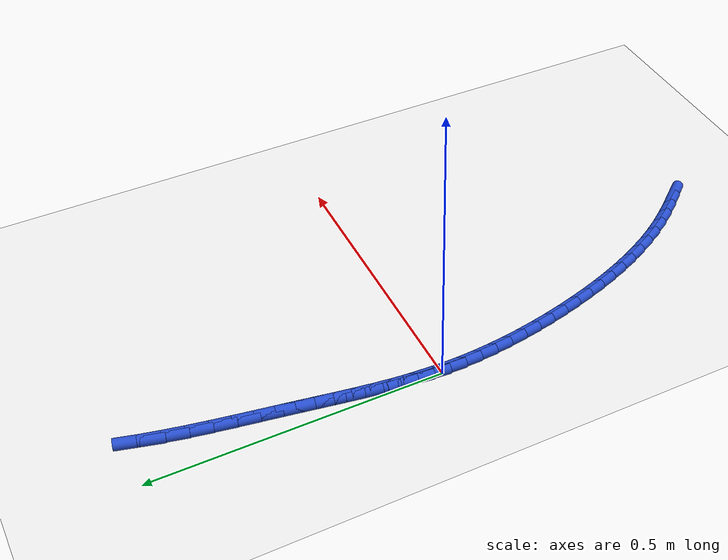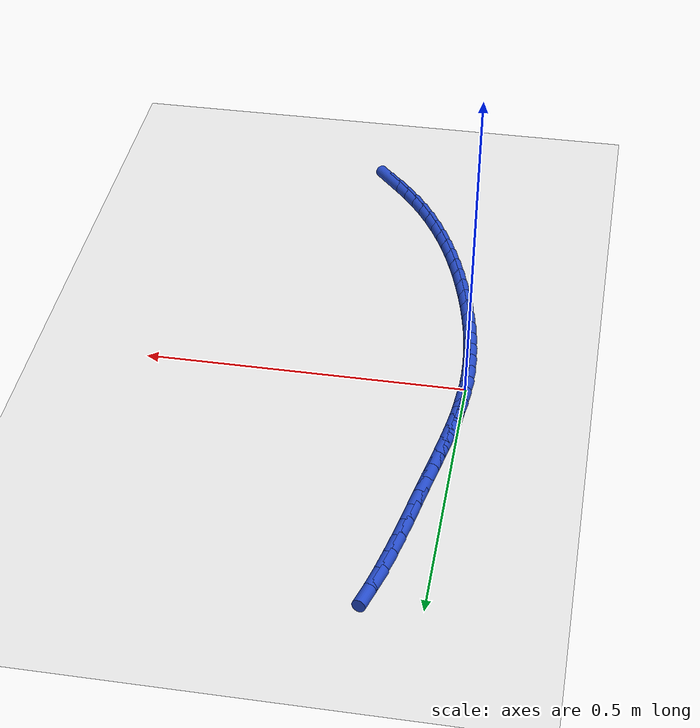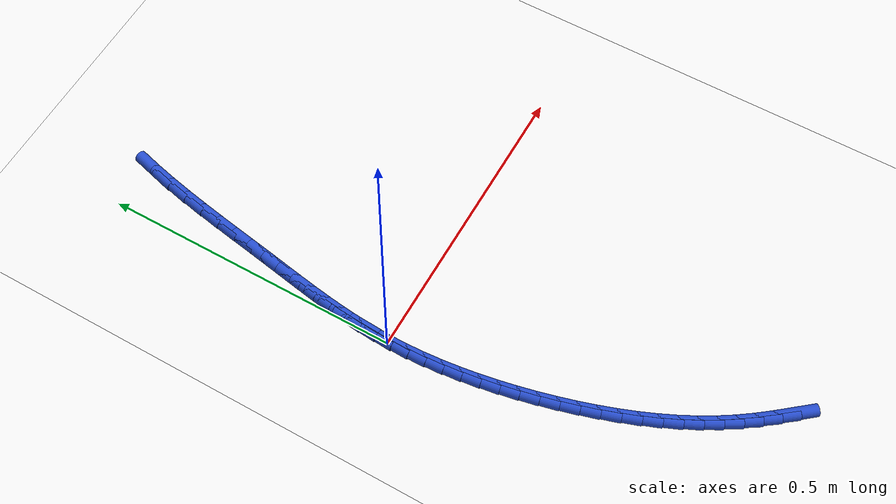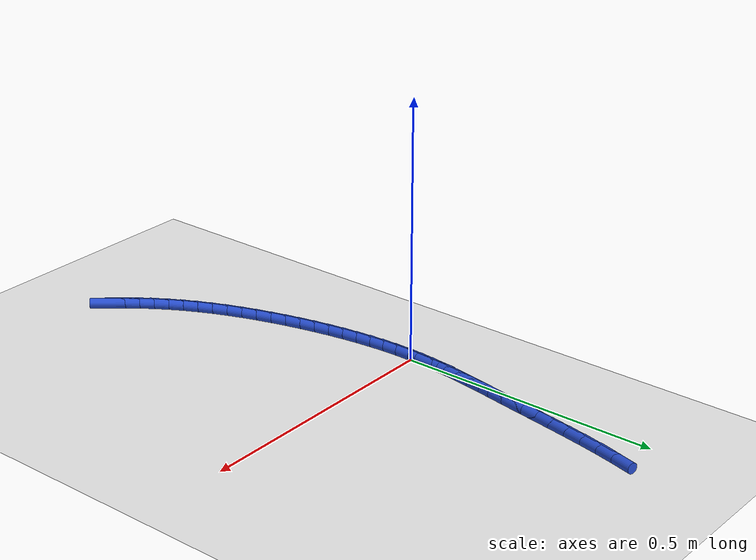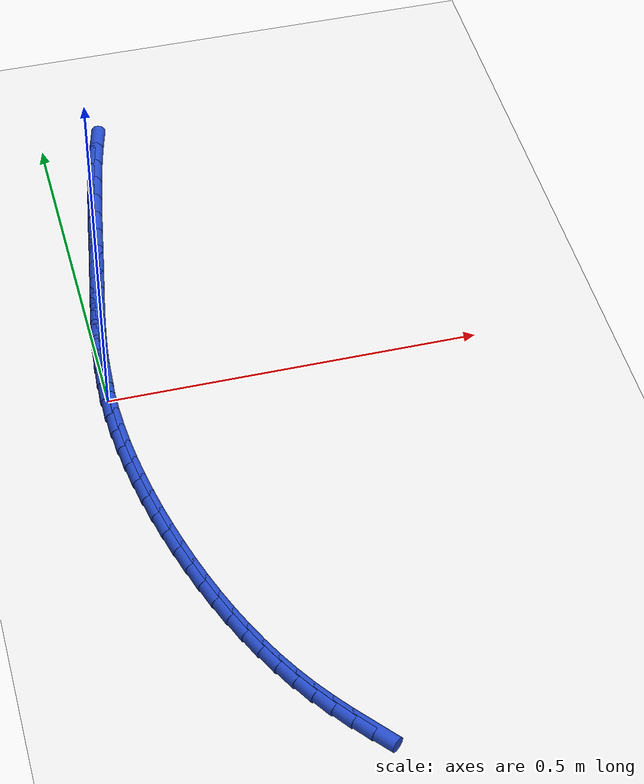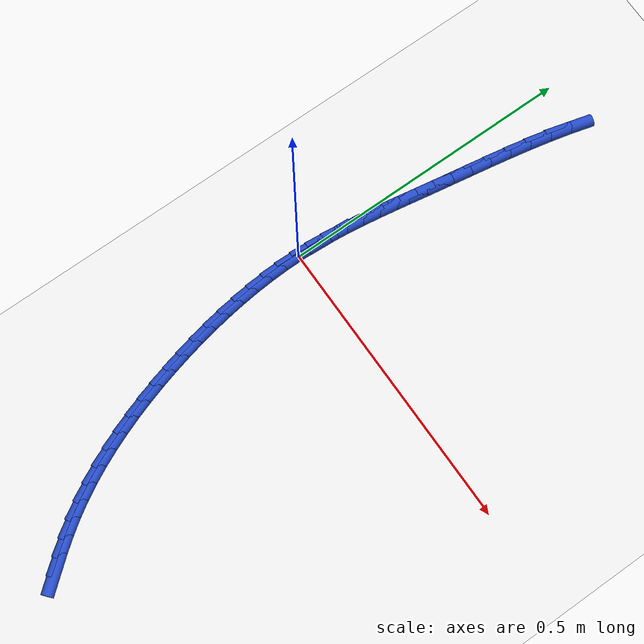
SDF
<sdf version="1.6">
 <world name="default">
  <model name="ground_plane">
   <static>1</static>
   <link name="link">
    <collision name="collision">
     <geometry><plane><normal>0 0 1</normal><size>100 100</size></plane></geometry>
     <surface><friction><ode><mu>100</mu><mu2>50</mu2></ode></friction></surface>
    </collision>
    <visual name="visual">
     <cast_shadows>0</cast_shadows>
     <geometry><plane><normal>0 0 1</normal><size>100 100</size></plane></geometry>
     <material>
      <script><uri>file://media/materials/scripts/gazebo.material</uri><name>Gazebo/WhiteGlow</name></script>
     </material>
    </visual>
   </link>
  </model>
  <model name="line">
   <link name="link_0">
    <pose>-6.938893903907228e-18 6.938893903907228e-17 0.01 0 1.57 1.5339146569883464</pose>
    <collision name="collision">
     <geometry><cylinder><radius>0.01</radius><length>0.08</length></cylinder></geometry>
    </collision>
    <visual name="visual">
     <material>
      <script><name>Gazebo/Blue</name><uri>file://media/materials/scripts/gazebo.material</uri></script>
     </material>
     <geometry><cylinder><radius>0.01</radius><length>0.08</length></cylinder></geometry>
    </visual>
   </link>
   <link name="link_1">
    <pose>0.0010493052129371212 0.02843768734357131 0.01 0 1.57 1.4981101231882537</pose>
    <collision name="collision">
     <geometry><cylinder><radius>0.01</radius><length>0.08</length></cylinder></geometry>
    </collision>
    <visual name="visual">
     <material>
      <script><name>Gazebo/Blue</name><uri>file://media/materials/scripts/gazebo.material</uri></script>
     </material>
     <geometry><cylinder><radius>0.01</radius><length>0.08</length></cylinder></geometry>
    </visual>
   </link>
   <link name="link_2">
    <pose>0.0031059583936793324 0.0566827990900283 0.01 0 1.57 1.4670960202386527</pose>
    <collision name="collision">
     <geometry><cylinder><radius>0.01</radius><length>0.08</length></cylinder></geometry>
    </collision>
    <visual name="visual">
     <material>
      <script><name>Gazebo/Blue</name><uri>file://media/materials/scripts/gazebo.material</uri></script>
     </material>
     <geometry><cylinder><radius>0.01</radius><length>0.08</length></cylinder></geometry>
    </visual>
   </link>
   <link name="link_3">
    <pose>0.0060472240694927895 0.08494418993205767 0.01 0 1.57 1.4415249648356097</pose>
    <collision name="collision">
     <geometry><cylinder><radius>0.01</radius><length>0.08</length></cylinder></geometry>
    </collision>
    <visual name="visual">
     <material>
      <script><name>Gazebo/Blue</name><uri>file://media/materials/scripts/gazebo.material</uri></script>
     </material>
     <geometry><cylinder><radius>0.01</radius><length>0.08</length></cylinder></geometry>
    </visual>
   </link>
   <link name="link_4">
    <pose>0.009750366767643648 0.11343071456234598 0.01 0 1.57 1.4217641060363364</pose>
    <collision name="collision">
     <geometry><cylinder><radius>0.01</radius><length>0.08</length></cylinder></geometry>
    </collision>
    <visual name="visual">
     <material>
      <script><name>Gazebo/Blue</name><uri>file://media/materials/scripts/gazebo.material</uri></script>
     </material>
     <geometry><cylinder><radius>0.01</radius><length>0.08</length></cylinder></geometry>
    </visual>
   </link>
   <link name="link_5">
    <pose>0.014092651015398076 0.14235122767357986 0.01 0 1.57 1.4079041039659708</pose>
    <collision name="collision">
     <geometry><cylinder><radius>0.01</radius><length>0.08</length></cylinder></geometry>
    </collision>
    <visual name="visual">
     <material>
      <script><name>Gazebo/Blue</name><uri>file://media/materials/scripts/gazebo.material</uri></script>
     </material>
     <geometry><cylinder><radius>0.01</radius><length>0.08</length></cylinder></geometry>
    </visual>
   </link>
   <link name="link_6">
    <pose>0.01895134134002223 0.17191458395844592 0.01 0 1.57 1.3997933661096715</pose>
    <collision name="collision">
     <geometry><cylinder><radius>0.01</radius><length>0.08</length></cylinder></geometry>
    </collision>
    <visual name="visual">
     <material>
      <script><name>Gazebo/Blue</name><uri>file://media/materials/scripts/gazebo.material</uri></script>
     </material>
     <geometry><cylinder><radius>0.01</radius><length>0.08</length></cylinder></geometry>
    </visual>
   </link>
   <link name="link_7">
    <pose>0.024203702268782275 0.20232963810963076 0.01 0 1.57 1.3970862993420965</pose>
    <collision name="collision">
     <geometry><cylinder><radius>0.01</radius><length>0.08</length></cylinder></geometry>
    </collision>
    <visual name="visual">
     <material>
      <script><name>Gazebo/Blue</name><uri>file://media/materials/scripts/gazebo.material</uri></script>
     </material>
     <geometry><cylinder><radius>0.01</radius><length>0.08</length></cylinder></geometry>
    </visual>
   </link>
   <link name="link_8">
    <pose>0.029726998328944352 0.2338052448198209 0.01 0 1.57 1.3992734096021746</pose>
    <collision name="collision">
     <geometry><cylinder><radius>0.01</radius><length>0.08</length></cylinder></geometry>
    </collision>
    <visual name="visual">
     <material>
      <script><name>Gazebo/Blue</name><uri>file://media/materials/scripts/gazebo.material</uri></script>
     </material>
     <geometry><cylinder><radius>0.01</radius><length>0.08</length></cylinder></geometry>
    </visual>
   </link>
   <link name="link_9">
    <pose>0.035399047078439085 0.26654906317082605 0.01 0 1.57 1.4026593575670723</pose>
    <collision name="collision">
     <geometry><cylinder><radius>0.01</radius><length>0.08</length></cylinder></geometry>
    </collision>
    <visual name="visual">
     <material>
      <script><name>Gazebo/Blue</name><uri>file://media/materials/scripts/gazebo.material</uri></script>
     </material>
     <geometry><cylinder><radius>0.01</radius><length>0.08</length></cylinder></geometry>
    </visual>
   </link>
   <link name="link_10">
    <pose>0.04117800039227584 0.30059507546760517 0.01 0 1.57 1.400934298260555</pose>
    <collision name="collision">
     <geometry><cylinder><radius>0.01</radius><length>0.08</length></cylinder></geometry>
    </collision>
    <visual name="visual">
     <material>
      <script><name>Gazebo/Blue</name><uri>file://media/materials/scripts/gazebo.material</uri></script>
     </material>
     <geometry><cylinder><radius>0.01</radius><length>0.08</length></cylinder></geometry>
    </visual>
   </link>
   <link name="link_11">
    <pose>0.047185825791042905 0.3356231068584216 0.01 0 1.57 1.3937304232371093</pose>
    <collision name="collision">
     <geometry><cylinder><radius>0.01</radius><length>0.08</length></cylinder></geometry>
    </collision>
    <visual name="visual">
     <material>
      <script><name>Gazebo/Blue</name><uri>file://media/materials/scripts/gazebo.material</uri></script>
     </material>
     <geometry><cylinder><radius>0.01</radius><length>0.08</length></cylinder></geometry>
    </visual>
   </link>
   <link name="link_12">
    <pose>0.05356444763646478 0.3712698372956781 0.01 0 1.57 1.3811548042032664</pose>
    <collision name="collision">
     <geometry><cylinder><radius>0.01</radius><length>0.08</length></cylinder></geometry>
    </collision>
    <visual name="visual">
     <material>
      <script><name>Gazebo/Blue</name><uri>file://media/materials/scripts/gazebo.material</uri></script>
     </material>
     <geometry><cylinder><radius>0.01</radius><length>0.08</length></cylinder></geometry>
    </visual>
   </link>
   <link name="link_13">
    <pose>0.060455790290265946 0.40717194673177687 0.01 0 1.57 1.3630226083841406</pose>
    <collision name="collision">
     <geometry><cylinder><radius>0.01</radius><length>0.08</length></cylinder></geometry>
    </collision>
    <visual name="visual">
     <material>
      <script><name>Gazebo/Blue</name><uri>file://media/materials/scripts/gazebo.material</uri></script>
     </material>
     <geometry><cylinder><radius>0.01</radius><length>0.08</length></cylinder></geometry>
    </visual>
   </link>
   <link name="link_14">
    <pose>0.06800177811417094 0.4429661151191214 0.01 0 1.57 1.3388666004226362</pose>
    <collision name="collision">
     <geometry><cylinder><radius>0.01</radius><length>0.08</length></cylinder></geometry>
    </collision>
    <visual name="visual">
     <material>
      <script><name>Gazebo/Blue</name><uri>file://media/materials/scripts/gazebo.material</uri></script>
     </material>
     <geometry><cylinder><radius>0.01</radius><length>0.08</length></cylinder></geometry>
    </visual>
   </link>
   <link name="link_15">
    <pose>0.07634433546990424 0.4782890224101138 0.01 0 1.57 1.307916968639445</pose>
    <collision name="collision">
     <geometry><cylinder><radius>0.01</radius><length>0.08</length></cylinder></geometry>
    </collision>
    <visual name="visual">
     <material>
      <script><name>Gazebo/Blue</name><uri>file://media/materials/scripts/gazebo.material</uri></script>
     </material>
     <geometry><cylinder><radius>0.01</radius><length>0.08</length></cylinder></geometry>
    </visual>
   </link>
   <link name="link_219">
    <pose>0.1929248821589781 -0.5784327576345369 0.01 0 1.57 -0.8810715063629643</pose>
    <collision name="collision">
     <geometry><cylinder><radius>0.01</radius><length>0.08</length></cylinder></geometry>
    </collision>
    <visual name="visual">
     <material>
      <script><name>Gazebo/Blue</name><uri>file://media/materials/scripts/gazebo.material</uri></script>
     </material>
     <geometry><cylinder><radius>0.01</radius><length>0.08</length></cylinder></geometry>
    </visual>
   </link>
   <link name="link_220">
    <pose>0.1749538888758578 -0.5566463971162301 0.01 0 1.57 -0.9139811432097835</pose>
    <collision name="collision">
     <geometry><cylinder><radius>0.01</radius><length>0.08</length></cylinder></geometry>
    </collision>
    <visual name="visual">
     <material>
      <script><name>Gazebo/Blue</name><uri>file://media/materials/scripts/gazebo.material</uri></script>
     </material>
     <geometry><cylinder><radius>0.01</radius><length>0.08</length></cylinder></geometry>
    </visual>
   </link>
   <link name="link_221">
    <pose>0.15769627561653105 -0.5342633975554338 0.01 0 1.57 -0.9544474301954046</pose>
    <collision name="collision">
     <geometry><cylinder><radius>0.01</radius><length>0.08</length></cylinder></geometry>
    </collision>
    <visual name="visual">
     <material>
      <script><name>Gazebo/Blue</name><uri>file://media/materials/scripts/gazebo.material</uri></script>
     </material>
     <geometry><cylinder><radius>0.01</radius><length>0.08</length></cylinder></geometry>
    </visual>
   </link>
   <link name="link_222">
    <pose>0.141279973721091 -0.5110899947820297 0.01 0 1.57 -1.0016252407613773</pose>
    <collision name="collision">
     <geometry><cylinder><radius>0.01</radius><length>0.08</length></cylinder></geometry>
    </collision>
    <visual name="visual">
     <material>
      <script><name>Gazebo/Blue</name><uri>file://media/materials/scripts/gazebo.material</uri></script>
     </material>
     <geometry><cylinder><radius>0.01</radius><length>0.08</length></cylinder></geometry>
    </visual>
   </link>
   <link name="link_223">
    <pose>0.1258288144027011 -0.48694000041431984 0.01 0 1.57 -1.0497696953456386</pose>
    <collision name="collision">
     <geometry><cylinder><radius>0.01</radius><length>0.08</length></cylinder></geometry>
    </collision>
    <visual name="visual">
     <material>
      <script><name>Gazebo/Blue</name><uri>file://media/materials/scripts/gazebo.material</uri></script>
     </material>
     <geometry><cylinder><radius>0.01</radius><length>0.08</length></cylinder></geometry>
    </visual>
   </link>
   <link name="link_224">
    <pose>0.11138632115256564 -0.4617756103330018 0.01 0 1.57 -1.0942617675050372</pose>
    <collision name="collision">
     <geometry><cylinder><radius>0.01</radius><length>0.08</length></cylinder></geometry>
    </collision>
    <visual name="visual">
     <material>
      <script><name>Gazebo/Blue</name><uri>file://media/materials/scripts/gazebo.material</uri></script>
     </material>
     <geometry><cylinder><radius>0.01</radius><length>0.08</length></cylinder></geometry>
    </visual>
   </link>
   <link name="link_225">
    <pose>0.09792279187725125 -0.4356943190438524 0.01 0 1.57 -1.1352199956022568</pose>
    <collision name="collision">
     <geometry><cylinder><radius>0.01</radius><length>0.08</length></cylinder></geometry>
    </collision>
    <visual name="visual">
     <material>
      <script><name>Gazebo/Blue</name><uri>file://media/materials/scripts/gazebo.material</uri></script>
     </material>
     <geometry><cylinder><radius>0.01</radius><length>0.08</length></cylinder></geometry>
    </visual>
   </link>
   <link name="link_226">
    <pose>0.08540584456939722 -0.4087985727190859 0.01 0 1.57 -1.17293773308816</pose>
    <collision name="collision">
     <geometry><cylinder><radius>0.01</radius><length>0.08</length></cylinder></geometry>
    </collision>
    <visual name="visual">
     <material>
      <script><name>Gazebo/Blue</name><uri>file://media/materials/scripts/gazebo.material</uri></script>
     </material>
     <geometry><cylinder><radius>0.01</radius><length>0.08</length></cylinder></geometry>
    </visual>
   </link>
   <link name="link_227">
    <pose>0.07380309722164281 -0.3811908175309166 0.01 0 1.57 -1.207700457577638</pose>
    <collision name="collision">
     <geometry><cylinder><radius>0.01</radius><length>0.08</length></cylinder></geometry>
    </collision>
    <visual name="visual">
     <material>
      <script><name>Gazebo/Blue</name><uri>file://media/materials/scripts/gazebo.material</uri></script>
     </material>
     <geometry><cylinder><radius>0.01</radius><length>0.08</length></cylinder></geometry>
    </visual>
   </link>
   <link name="link_228">
    <pose>0.06308216782662739 -0.35297349965155866 0.01 0 1.57 -1.2397790499436443</pose>
    <collision name="collision">
     <geometry><cylinder><radius>0.01</radius><length>0.08</length></cylinder></geometry>
    </collision>
    <visual name="visual">
     <material>
      <script><name>Gazebo/Blue</name><uri>file://media/materials/scripts/gazebo.material</uri></script>
     </material>
     <geometry><cylinder><radius>0.01</radius><length>0.08</length></cylinder></geometry>
    </visual>
   </link>
   <link name="link_229">
    <pose>0.05321067437699016 -0.32424906525322644 0.01 0 1.57 -1.269426094803137</pose>
    <collision name="collision">
     <geometry><cylinder><radius>0.01</radius><length>0.08</length></cylinder></geometry>
    </collision>
    <visual name="visual">
     <material>
      <script><name>Gazebo/Blue</name><uri>file://media/materials/scripts/gazebo.material</uri></script>
     </material>
     <geometry><cylinder><radius>0.01</radius><length>0.08</length></cylinder></geometry>
    </visual>
   </link>
   <link name="link_230">
    <pose>0.044156234865370264 -0.29511996050813355 0.01 0 1.57 -1.2968742901724473</pose>
    <collision name="collision">
     <geometry><cylinder><radius>0.01</radius><length>0.08</length></cylinder></geometry>
    </collision>
    <visual name="visual">
     <material>
      <script><name>Gazebo/Blue</name><uri>file://media/materials/scripts/gazebo.material</uri></script>
     </material>
     <geometry><cylinder><radius>0.01</radius><length>0.08</length></cylinder></geometry>
    </visual>
   </link>
   <link name="link_231">
    <pose>0.03588646728440741 -0.2656886315884954 0.01 0 1.57 -1.3225409501173886</pose>
    <collision name="collision">
     <geometry><cylinder><radius>0.01</radius><length>0.08</length></cylinder></geometry>
    </collision>
    <visual name="visual">
     <material>
      <script><name>Gazebo/Blue</name><uri>file://media/materials/scripts/gazebo.material</uri></script>
     </material>
     <geometry><cylinder><radius>0.01</radius><length>0.08</length></cylinder></geometry>
    </visual>
   </link>
   <link name="link_232">
    <pose>0.02837474528610546 -0.23605476559575994 0.01 0 1.57 -1.348292390613231</pose>
    <collision name="collision">
     <geometry><cylinder><radius>0.01</radius><length>0.08</length></cylinder></geometry>
    </collision>
    <visual name="visual">
     <material>
      <script><name>Gazebo/Blue</name><uri>file://media/materials/scripts/gazebo.material</uri></script>
     </material>
     <geometry><cylinder><radius>0.01</radius><length>0.08</length></cylinder></geometry>
    </visual>
   </link>
   <link name="link_233">
    <pose>0.02164168782788211 -0.20629540181072945 0.01 0 1.57 -1.3751162109785837</pose>
    <collision name="collision">
     <geometry><cylinder><radius>0.01</radius><length>0.08</length></cylinder></geometry>
    </collision>
    <visual name="visual">
     <material>
      <script><name>Gazebo/Blue</name><uri>file://media/materials/scripts/gazebo.material</uri></script>
     </material>
     <geometry><cylinder><radius>0.01</radius><length>0.08</length></cylinder></geometry>
    </visual>
   </link>
   <link name="link_234">
    <pose>0.015731082712427256 -0.17647647314400283 0.01 0 1.57 -1.403186825325925</pose>
    <collision name="collision">
     <geometry><cylinder><radius>0.01</radius><length>0.08</length></cylinder></geometry>
    </collision>
    <visual name="visual">
     <material>
      <script><name>Gazebo/Blue</name><uri>file://media/materials/scripts/gazebo.material</uri></script>
     </material>
     <geometry><cylinder><radius>0.01</radius><length>0.08</length></cylinder></geometry>
    </visual>
   </link>
   <link name="link_235">
    <pose>0.010686877239422389 -0.14666383604865108 0.01 0 1.57 -1.43268358739844</pose>
    <collision name="collision">
     <geometry><cylinder><radius>0.01</radius><length>0.08</length></cylinder></geometry>
    </collision>
    <visual name="visual">
     <material>
      <script><name>Gazebo/Blue</name><uri>file://media/materials/scripts/gazebo.material</uri></script>
     </material>
     <geometry><cylinder><radius>0.01</radius><length>0.08</length></cylinder></geometry>
    </visual>
   </link>
   <link name="link_236">
    <pose>0.006553018708549004 -0.11692334697774527 0.01 0 1.57 -1.463797839096608</pose>
    <collision name="collision">
     <geometry><cylinder><radius>0.01</radius><length>0.08</length></cylinder></geometry>
    </collision>
    <visual name="visual">
     <material>
      <script><name>Gazebo/Blue</name><uri>file://media/materials/scripts/gazebo.material</uri></script>
     </material>
     <geometry><cylinder><radius>0.01</radius><length>0.08</length></cylinder></geometry>
    </visual>
   </link>
   <link name="link_237">
    <pose>0.0033734544194885816 -0.08732086238435631 0.01 0 1.57 -1.4967339164842783</pose>
    <collision name="collision">
     <geometry><cylinder><radius>0.01</radius><length>0.08</length></cylinder></geometry>
    </collision>
    <visual name="visual">
     <material>
      <script><name>Gazebo/Blue</name><uri>file://media/materials/scripts/gazebo.material</uri></script>
     </material>
     <geometry><cylinder><radius>0.01</radius><length>0.08</length></cylinder></geometry>
    </visual>
   </link>
   <link name="link_238">
    <pose>0.0011921316719225657 -0.05792223872155442 0.01 0 1.57 -1.5317095954266207</pose>
    <collision name="collision">
     <geometry><cylinder><radius>0.01</radius><length>0.08</length></cylinder></geometry>
    </collision>
    <visual name="visual">
     <material>
      <script><name>Gazebo/Blue</name><uri>file://media/materials/scripts/gazebo.material</uri></script>
     </material>
     <geometry><cylinder><radius>0.01</radius><length>0.08</length></cylinder></geometry>
    </visual>
   </link>
   <link name="link_239">
    <pose>5.299776553256263e-05 -0.028793332442412178 0.01 0 1.57 -1.568955702553565</pose>
    <collision name="collision">
     <geometry><cylinder><radius>0.01</radius><length>0.08</length></cylinder></geometry>
    </collision>
    <visual name="visual">
     <material>
      <script><name>Gazebo/Blue</name><uri>file://media/materials/scripts/gazebo.material</uri></script>
     </material>
     <geometry><cylinder><radius>0.01</radius><length>0.08</length></cylinder></geometry>
    </visual>
   </link>
   <link name="link_240">
    <pose>-7.806255641895632e-18 2.0816681711721685e-16 0.01 0 1.57 1.5328781410921406</pose>
    <collision name="collision">
     <geometry><cylinder><radius>0.01</radius><length>0.08</length></cylinder></geometry>
    </collision>
    <visual name="visual">
     <material>
      <script><name>Gazebo/Blue</name><uri>file://media/materials/scripts/gazebo.material</uri></script>
     </material>
     <geometry><cylinder><radius>0.01</radius><length>0.08</length></cylinder></geometry>
    </visual>
   </link>
   <link name="link_241">
    <pose>0.0010770856750063375 0.02839190215261176 0.01 0 1.57 1.490356223293166</pose>
    <collision name="collision">
     <geometry><cylinder><radius>0.01</radius><length>0.08</length></cylinder></geometry>
    </collision>
    <visual name="visual">
     <material>
      <script><name>Gazebo/Blue</name><uri>file://media/materials/scripts/gazebo.material</uri></script>
     </material>
     <geometry><cylinder><radius>0.01</radius><length>0.08</length></cylinder></geometry>
    </visual>
   </link>
   <link name="link_242">
    <pose>0.0033282020902330924 0.0563165175623515 0.01 0 1.57 1.5117668333163627</pose>
    <collision name="collision">
     <geometry><cylinder><radius>0.01</radius><length>0.08</length></cylinder></geometry>
    </collision>
    <visual name="visual">
     <material>
      <script><name>Gazebo/Blue</name><uri>file://media/materials/scripts/gazebo.material</uri></script>
     </material>
     <geometry><cylinder><radius>0.01</radius><length>0.08</length></cylinder></geometry>
    </visual>
   </link>
  </model>
 </world>
</sdf>
